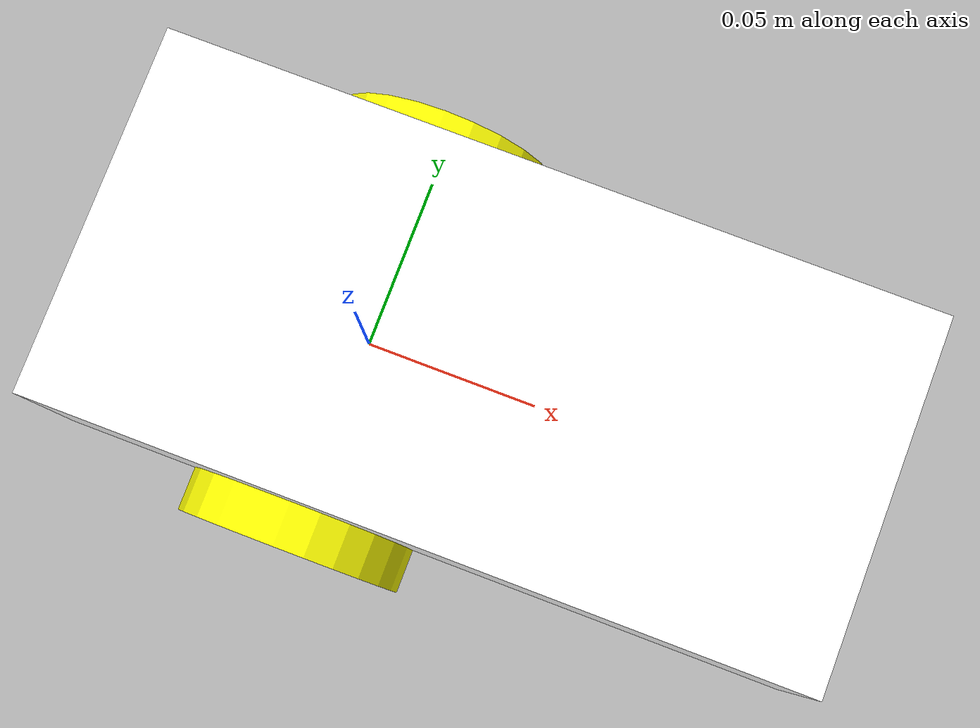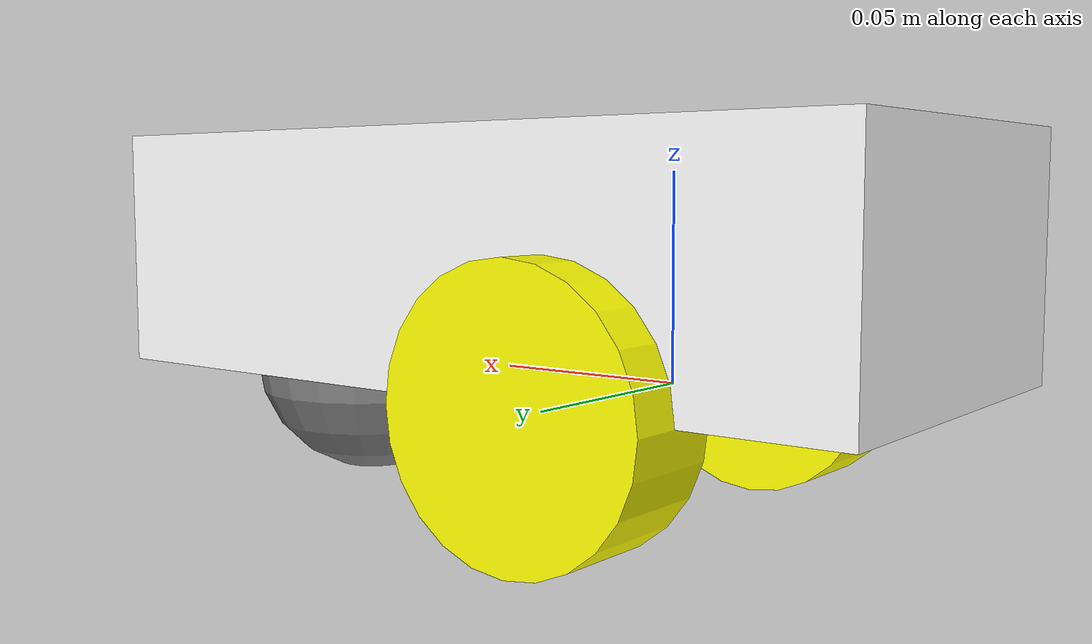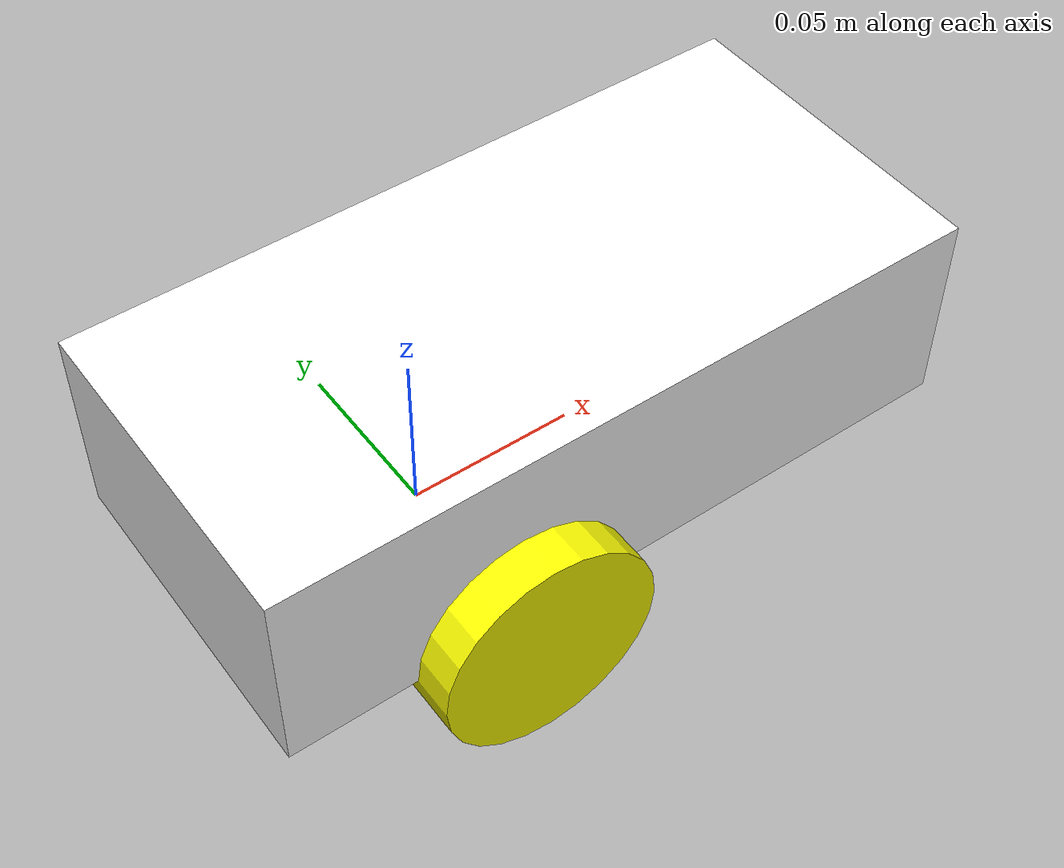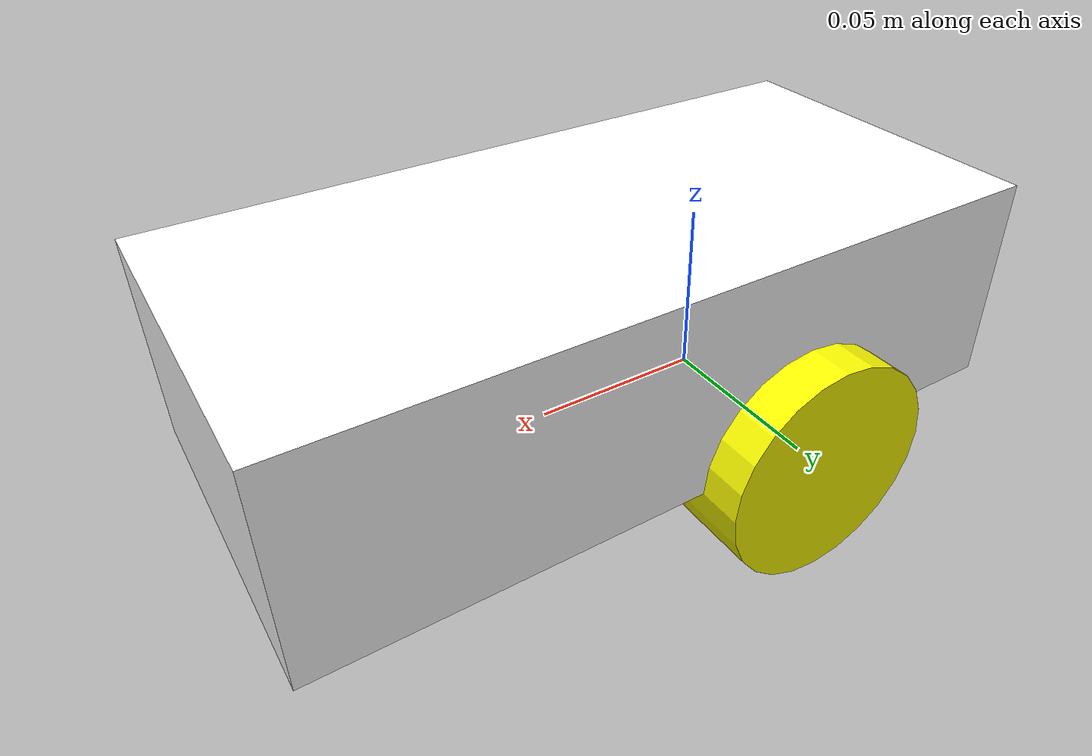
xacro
<?xml version="1.0"?>
<robot xmlns:xacro="http://www.ros.org/wiki/xacro" name="my_bot">

    <xacro:include filename="inertial_macros.xacro"/>

    <material name="yellow">
        <color rgba="1 1 0 1"/>
    </material>

    <material name="white">
        <color rgba="1 1 1 1"/>
    </material>

    <material name="gray">
        <color rgba="0.5 0.5 0.5 1"/>
    </material>

    <!-- Define the robot's base -->
    <link name="base_link">

    </link>

    <!-- CHASSIS LINK -->
    <joint name="chassis_joint" type="fixed">
        <parent link="base_link"/>
        <child link="chassis"/>
        <origin xyz="-0.07 0 0"/>
    </joint>

    <link name="chassis">
        <visual>
            <origin xyz="0.105 0 0.03"/>
            <geometry>
                <box size="0.21 0.10 0.06"/>
            </geometry>
            <material name="white"/>
        </visual>
        <collision>
            <origin xyz="0.105 0 0.03"/>
            <geometry>
                <box size="0.21 0.10 0.06"/>
            </geometry>
        </collision>
        <xacro:inertial_box mass="0.4" x="0.21" y="0.10" z="0.06">
            <origin xyz="0.105 0 0.03"/>
        </xacro:inertial_box>
    </link>

    <!-- WHEEL LINKS -->
    <joint name="wheel_left_joint" type="continuous">
        <parent link="base_link"/>
        <child link="wheel_left"/>
        <origin xyz="0 0.05 0" rpy="-1.5708 0 0"/>
        <axis xyz="0 0 1"/>
    </joint>

    <link name="wheel_left">
        <visual>
            <geometry>
                <cylinder radius="0.0325" length="0.025"/>
            </geometry>
            <material name="yellow"/>
        </visual>
        <collision>
            <geometry>
                <cylinder radius="0.0325" length="0.025"/>
            </geometry>
        </collision>
        <xacro:inertial_cylinder mass="0.05" length="0.025" radius="0.0325">
            <origin xyz="0 0 0" rpy="0 0 0"/>
        </xacro:inertial_cylinder>
    </link>

    <!-- WHEEL LINKS RIGHT -->
    <joint name="wheel_right_joint" type="continuous">
        <parent link="base_link"/>
        <child link="wheel_right"/>
        <origin xyz="0 -0.05 0" rpy="1.5708 0 0"/>
        <axis xyz="0 0 -1"/>
    </joint>

    <link name="wheel_right">
        <visual>
            <geometry>
                <cylinder radius="0.0325" length="0.025"/>
            </geometry>
            <material name="yellow"/>
        </visual>
        <collision>
            <geometry>
                <cylinder radius="0.0325" length="0.025"/>
            </geometry>
        </collision>
        <xacro:inertial_cylinder mass="0.05" length="0.025" radius="0.0325">
            <origin xyz="0 0 0" rpy="0 0 0"/>
        </xacro:inertial_cylinder>
    </link>

    <!-- Caster Wheel link -->

    <joint name="caster_wheel_joint" type="fixed">
        <parent link="chassis"/>
        <child link="caster_wheel"/>
        <origin xyz="0.17 0 0"/>
    </joint>

    <link name="caster_wheel">
        <visual>
            <geometry>
                <sphere radius="0.0325"/>
            </geometry>
            <material name="gray"/>
        </visual>
        <collision>
            <geometry>
                <sphere radius="0.0325"/>
            </geometry>
        </collision>
        <xacro:inertial_sphere mass="0.05" radius="0.0325">
            <origin xyz="0 0 0" rpy="0 0 0"/>
        </xacro:inertial_sphere>
    </link>

</robot>
